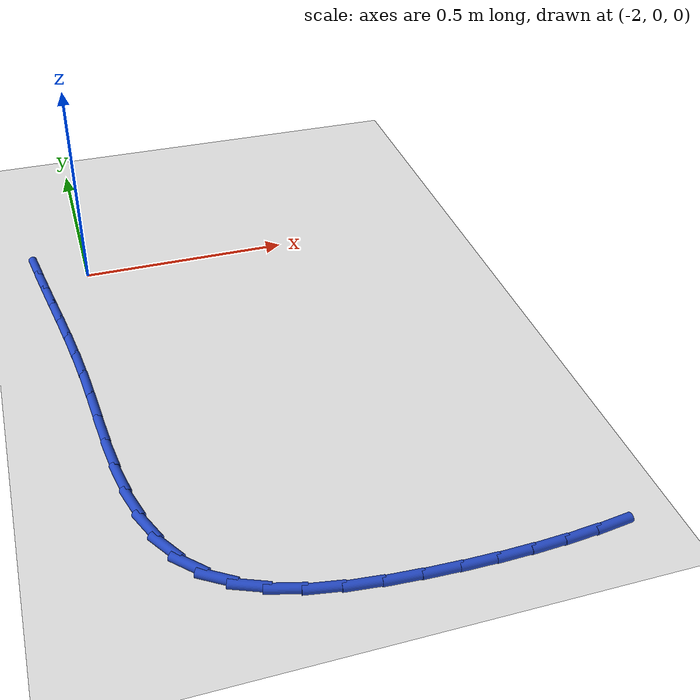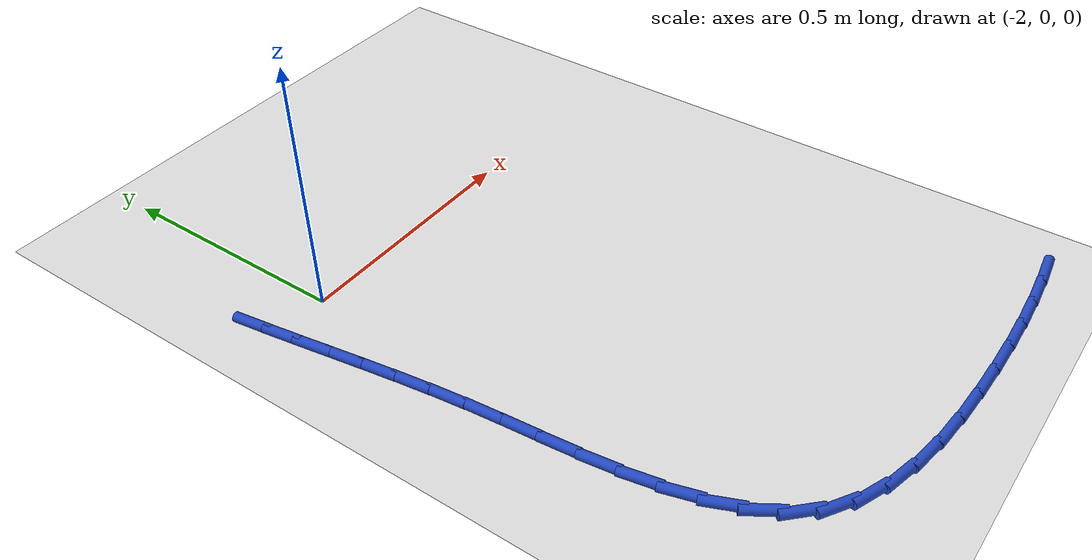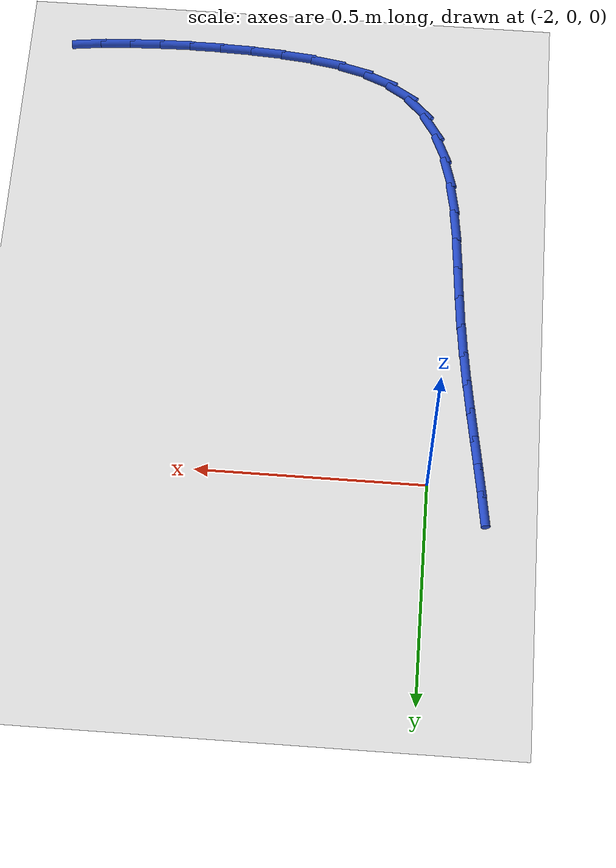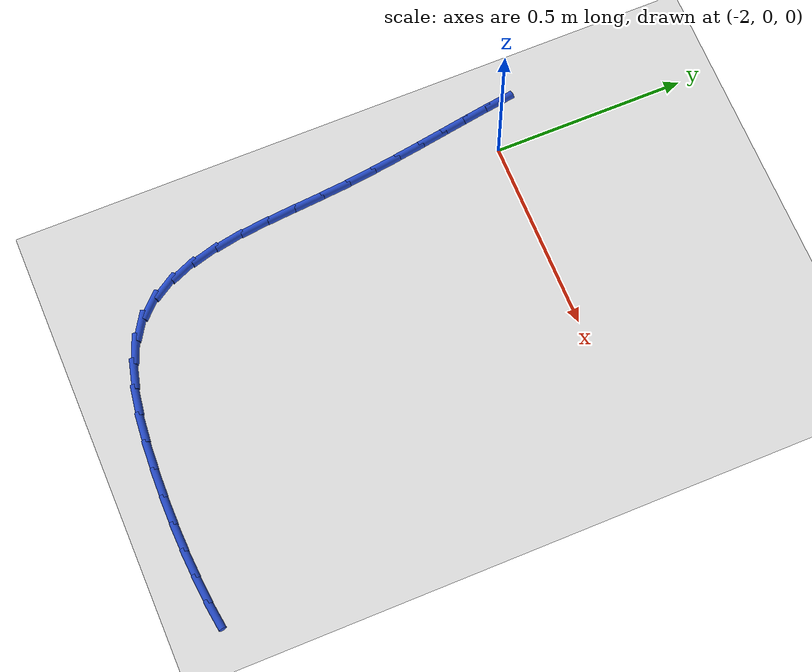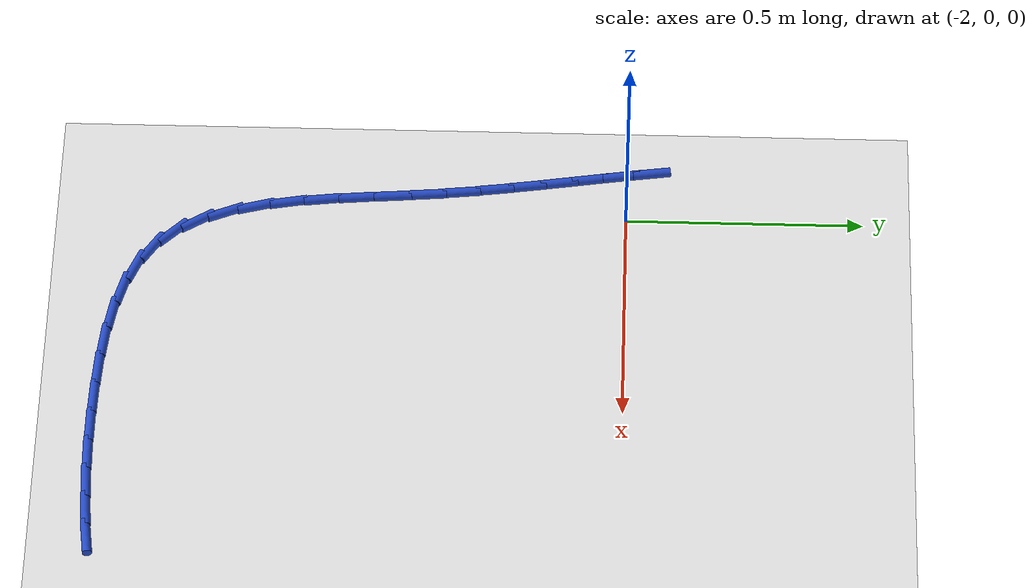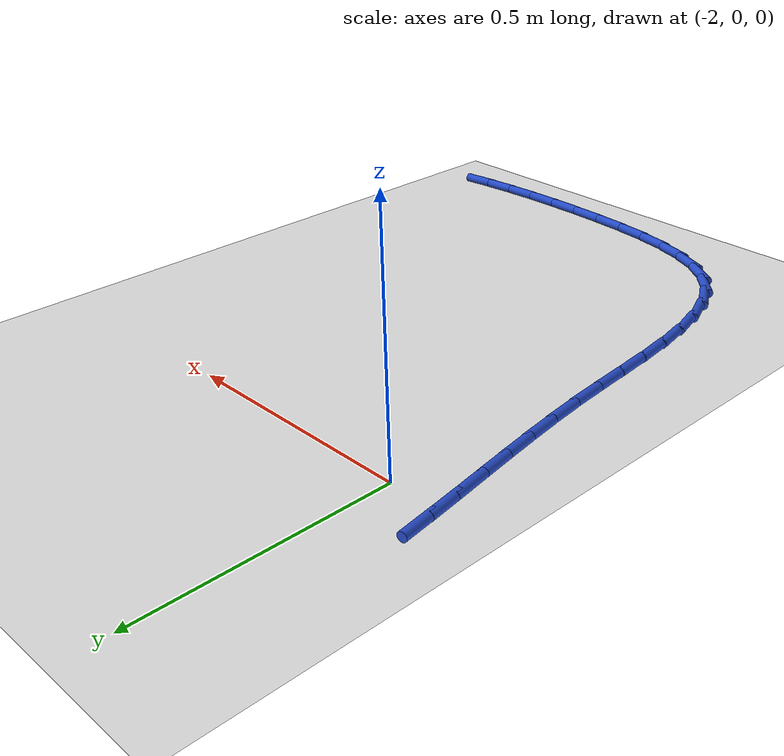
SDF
<sdf version="1.6">
 <world name="default">
  <model name="ground_plane">
   <static>1</static>
   <link name="link">
    <collision name="collision">
     <geometry><plane><normal>0 0 1</normal><size>100 100</size></plane></geometry>
     <surface><friction><ode><mu>100</mu><mu2>50</mu2></ode></friction></surface>
    </collision>
    <visual name="visual">
     <cast_shadows>0</cast_shadows>
     <geometry><plane><normal>0 0 1</normal><size>100 100</size></plane></geometry>
     <material>
      <script><uri>file://media/materials/scripts/gazebo.material</uri><name>Gazebo/WhiteGlow</name></script>
     </material>
    </visual>
   </link>
  </model>
  <model name="line">
   <link name="link_57">
    <pose>-2.122200458308828 0.05315590974785821 0.01 0 1.57 -1.4257960675158883</pose>
    <collision name="collision">
     <geometry><cylinder><radius>0.01</radius><length>0.08</length></cylinder></geometry>
    </collision>
    <visual name="visual">
     <material>
      <script><name>Gazebo/Blue</name><uri>file://media/materials/scripts/gazebo.material</uri></script>
     </material>
     <geometry><cylinder><radius>0.01</radius><length>0.08</length></cylinder></geometry>
    </visual>
   </link>
   <link name="link_58">
    <pose>-2.1128059712877327 -0.011178834647294605 0.01 0 1.57 -1.4155370163606633</pose>
    <collision name="collision">
     <geometry><cylinder><radius>0.01</radius><length>0.08</length></cylinder></geometry>
    </collision>
    <visual name="visual">
     <material>
      <script><name>Gazebo/Blue</name><uri>file://media/materials/scripts/gazebo.material</uri></script>
     </material>
     <geometry><cylinder><radius>0.01</radius><length>0.08</length></cylinder></geometry>
    </visual>
   </link>
   <link name="link_59">
    <pose>-2.102611384518419 -0.07631206081221154 0.01 0 1.57 -1.4122444783969827</pose>
    <collision name="collision">
     <geometry><cylinder><radius>0.01</radius><length>0.08</length></cylinder></geometry>
    </collision>
    <visual name="visual">
     <material>
      <script><name>Gazebo/Blue</name><uri>file://media/materials/scripts/gazebo.material</uri></script>
     </material>
     <geometry><cylinder><radius>0.01</radius><length>0.08</length></cylinder></geometry>
    </visual>
   </link>
   <link name="link_60">
    <pose>-2.0920390971730276 -0.1424326861936498 0.01 0 1.57 -1.4156191204695645</pose>
    <collision name="collision">
     <geometry><cylinder><radius>0.01</radius><length>0.08</length></cylinder></geometry>
    </collision>
    <visual name="visual">
     <material>
      <script><name>Gazebo/Blue</name><uri>file://media/materials/scripts/gazebo.material</uri></script>
     </material>
     <geometry><cylinder><radius>0.01</radius><length>0.08</length></cylinder></geometry>
    </visual>
   </link>
   <link name="link_61">
    <pose>-2.0815115084236995 -0.20972962823836974 0.01 0 1.57 -1.425309974254642</pose>
    <collision name="collision">
     <geometry><cylinder><radius>0.01</radius><length>0.08</length></cylinder></geometry>
    </collision>
    <visual name="visual">
     <material>
      <script><name>Gazebo/Blue</name><uri>file://media/materials/scripts/gazebo.material</uri></script>
     </material>
     <geometry><cylinder><radius>0.01</radius><length>0.08</length></cylinder></geometry>
    </visual>
   </link>
   <link name="link_62">
    <pose>-2.0714510174425746 -0.2783918043931284 0.01 0 1.57 -1.4409209544580361</pose>
    <collision name="collision">
     <geometry><cylinder><radius>0.01</radius><length>0.08</length></cylinder></geometry>
    </collision>
    <visual name="visual">
     <material>
      <script><name>Gazebo/Blue</name><uri>file://media/materials/scripts/gazebo.material</uri></script>
     </material>
     <geometry><cylinder><radius>0.01</radius><length>0.08</length></cylinder></geometry>
    </visual>
   </link>
   <link name="link_63">
    <pose>-2.0622800234017933 -0.3486081321046862 0.01 0 1.57 -1.4620117612770123</pose>
    <collision name="collision">
     <geometry><cylinder><radius>0.01</radius><length>0.08</length></cylinder></geometry>
    </collision>
    <visual name="visual">
     <material>
      <script><name>Gazebo/Blue</name><uri>file://media/materials/scripts/gazebo.material</uri></script>
     </material>
     <geometry><cylinder><radius>0.01</radius><length>0.08</length></cylinder></geometry>
    </visual>
   </link>
   <link name="link_64">
    <pose>-2.0544209254734964 -0.42056752881980003 0.01 0 1.57 -1.4846061456886974</pose>
    <collision name="collision">
     <geometry><cylinder><radius>0.01</radius><length>0.08</length></cylinder></geometry>
    </collision>
    <visual name="visual">
     <material>
      <script><name>Gazebo/Blue</name><uri>file://media/materials/scripts/gazebo.material</uri></script>
     </material>
     <geometry><cylinder><radius>0.01</radius><length>0.08</length></cylinder></geometry>
    </visual>
   </link>
   <link name="link_65">
    <pose>-2.048054107879359 -0.49425392641981497 0.01 0 1.57 -1.491678495242095</pose>
    <collision name="collision">
     <geometry><cylinder><radius>0.01</radius><length>0.08</length></cylinder></geometry>
    </collision>
    <visual name="visual">
     <material>
      <script><name>Gazebo/Blue</name><uri>file://media/materials/scripts/gazebo.material</uri></script>
     </material>
     <geometry><cylinder><radius>0.01</radius><length>0.08</length></cylinder></geometry>
    </visual>
   </link>
   <link name="link_66">
    <pose>-2.042157129425947 -0.5686324691147534 0.01 0 1.57 -1.4785122833428632</pose>
    <collision name="collision">
     <geometry><cylinder><radius>0.01</radius><length>0.08</length></cylinder></geometry>
    </collision>
    <visual name="visual">
     <material>
      <script><name>Gazebo/Blue</name><uri>file://media/materials/scripts/gazebo.material</uri></script>
     </material>
     <geometry><cylinder><radius>0.01</radius><length>0.08</length></cylinder></geometry>
    </visual>
   </link>
   <link name="link_67">
    <pose>-2.035334577731616 -0.642352396209785 0.01 0 1.57 -1.4439727586413824</pose>
    <collision name="collision">
     <geometry><cylinder><radius>0.01</radius><length>0.08</length></cylinder></geometry>
    </collision>
    <visual name="visual">
     <material>
      <script><name>Gazebo/Blue</name><uri>file://media/materials/scripts/gazebo.material</uri></script>
     </material>
     <geometry><cylinder><radius>0.01</radius><length>0.08</length></cylinder></geometry>
    </visual>
   </link>
   <link name="link_68">
    <pose>-2.026190926563248 -0.7140628505784017 0.01 0 1.57 -1.3848176868150515</pose>
    <collision name="collision">
     <geometry><cylinder><radius>0.01</radius><length>0.08</length></cylinder></geometry>
    </collision>
    <visual name="visual">
     <material>
      <script><name>Gazebo/Blue</name><uri>file://media/materials/scripts/gazebo.material</uri></script>
     </material>
     <geometry><cylinder><radius>0.01</radius><length>0.08</length></cylinder></geometry>
    </visual>
   </link>
   <link name="link_69">
    <pose>-2.0133306496877252 -0.7824129750940925 0.01 0 1.57 -1.295551955618781</pose>
    <collision name="collision">
     <geometry><cylinder><radius>0.01</radius><length>0.08</length></cylinder></geometry>
    </collision>
    <visual name="visual">
     <material>
      <script><name>Gazebo/Blue</name><uri>file://media/materials/scripts/gazebo.material</uri></script>
     </material>
     <geometry><cylinder><radius>0.01</radius><length>0.08</length></cylinder></geometry>
    </visual>
   </link>
   <link name="link_70">
    <pose>-1.9953582208719283 -0.8460519126303491 0.01 0 1.57 -1.1687796489907092</pose>
    <collision name="collision">
     <geometry><cylinder><radius>0.01</radius><length>0.08</length></cylinder></geometry>
    </collision>
    <visual name="visual">
     <material>
      <script><name>Gazebo/Blue</name><uri>file://media/materials/scripts/gazebo.material</uri></script>
     </material>
     <geometry><cylinder><radius>0.01</radius><length>0.08</length></cylinder></geometry>
    </visual>
   </link>
   <link name="link_71">
    <pose>-1.9708781138827407 -0.903628806060661 0.01 0 1.57 -0.9975565217574115</pose>
    <collision name="collision">
     <geometry><cylinder><radius>0.01</radius><length>0.08</length></cylinder></geometry>
    </collision>
    <visual name="visual">
     <material>
      <script><name>Gazebo/Blue</name><uri>file://media/materials/scripts/gazebo.material</uri></script>
     </material>
     <geometry><cylinder><radius>0.01</radius><length>0.08</length></cylinder></geometry>
    </visual>
   </link>
   <link name="link_72">
    <pose>-1.938494802487043 -0.9537927982585198 0.01 0 1.57 -0.7821475732626486</pose>
    <collision name="collision">
     <geometry><cylinder><radius>0.01</radius><length>0.08</length></cylinder></geometry>
    </collision>
    <visual name="visual">
     <material>
      <script><name>Gazebo/Blue</name><uri>file://media/materials/scripts/gazebo.material</uri></script>
     </material>
     <geometry><cylinder><radius>0.01</radius><length>0.08</length></cylinder></geometry>
    </visual>
   </link>
   <link name="link_73">
    <pose>-1.8968192503815038 -0.9951982870010951 0.01 0 1.57 -0.5584788448870625</pose>
    <collision name="collision">
     <geometry><cylinder><radius>0.01</radius><length>0.08</length></cylinder></geometry>
    </collision>
    <visual name="visual">
     <material>
      <script><name>Gazebo/Blue</name><uri>file://media/materials/scripts/gazebo.material</uri></script>
     </material>
     <geometry><cylinder><radius>0.01</radius><length>0.08</length></cylinder></geometry>
    </visual>
   </link>
   <link name="link_74">
    <pose>-1.8454473159020583 -1.0272971403981077 0.01 0 1.57 -0.3821272775951044</pose>
    <collision name="collision">
     <geometry><cylinder><radius>0.01</radius><length>0.08</length></cylinder></geometry>
    </collision>
    <visual name="visual">
     <material>
      <script><name>Gazebo/Blue</name><uri>file://media/materials/scripts/gazebo.material</uri></script>
     </material>
     <geometry><cylinder><radius>0.01</radius><length>0.08</length></cylinder></geometry>
    </visual>
   </link>
   <link name="link_75">
    <pose>-1.7860057181255977 -1.0511856168583773 0.01 0 1.57 -0.25311962442124863</pose>
    <collision name="collision">
     <geometry><cylinder><radius>0.01</radius><length>0.08</length></cylinder></geometry>
    </collision>
    <visual name="visual">
     <material>
      <script><name>Gazebo/Blue</name><uri>file://media/materials/scripts/gazebo.material</uri></script>
     </material>
     <geometry><cylinder><radius>0.01</radius><length>0.08</length></cylinder></geometry>
    </visual>
   </link>
   <link name="link_76">
    <pose>-1.7203718748236587 -1.0681629658147587 0.01 0 1.57 -0.16107535530765094</pose>
    <collision name="collision">
     <geometry><cylinder><radius>0.01</radius><length>0.08</length></cylinder></geometry>
    </collision>
    <visual name="visual">
     <material>
      <script><name>Gazebo/Blue</name><uri>file://media/materials/scripts/gazebo.material</uri></script>
     </material>
     <geometry><cylinder><radius>0.01</radius><length>0.08</length></cylinder></geometry>
    </visual>
   </link>
   <link name="link_77">
    <pose>-1.6504232037677815 -1.079528436700107 0.01 0 1.57 -0.09712710116009368</pose>
    <collision name="collision">
     <geometry><cylinder><radius>0.01</radius><length>0.08</length></cylinder></geometry>
    </collision>
    <visual name="visual">
     <material>
      <script><name>Gazebo/Blue</name><uri>file://media/materials/scripts/gazebo.material</uri></script>
     </material>
     <geometry><cylinder><radius>0.01</radius><length>0.08</length></cylinder></geometry>
    </visual>
   </link>
   <link name="link_78">
    <pose>-1.5780371227295034 -1.086581278947277 0.01 0 1.57 -0.05531707682838279</pose>
    <collision name="collision">
     <geometry><cylinder><radius>0.01</radius><length>0.08</length></cylinder></geometry>
    </collision>
    <visual name="visual">
     <material>
      <script><name>Gazebo/Blue</name><uri>file://media/materials/scripts/gazebo.material</uri></script>
     </material>
     <geometry><cylinder><radius>0.01</radius><length>0.08</length></cylinder></geometry>
    </visual>
   </link>
   <link name="link_79">
    <pose>-1.505090821617412 -1.0906205759856604 0.01 0 1.57 -0.028126675567464038</pose>
    <collision name="collision">
     <geometry><cylinder><radius>0.01</radius><length>0.08</length></cylinder></geometry>
    </collision>
    <visual name="visual">
     <material>
      <script><name>Gazebo/Blue</name><uri>file://media/materials/scripts/gazebo.material</uri></script>
     </material>
     <geometry><cylinder><radius>0.01</radius><length>0.08</length></cylinder></geometry>
    </visual>
   </link>
   <link name="link_80">
    <pose>-1.4330523106213735 -1.0926473142985658 0.01 0 1.57 -0.001437114354567868</pose>
    <collision name="collision">
     <geometry><cylinder><radius>0.01</radius><length>0.08</length></cylinder></geometry>
    </collision>
    <visual name="visual">
     <material>
      <script><name>Gazebo/Blue</name><uri>file://media/materials/scripts/gazebo.material</uri></script>
     </material>
     <geometry><cylinder><radius>0.01</radius><length>0.08</length></cylinder></geometry>
    </visual>
   </link>
   <link name="link_81">
    <pose>-1.3621360350247835 -1.0927492291663596 0.01 0 1.57 0.027342077888966688</pose>
    <collision name="collision">
     <geometry><cylinder><radius>0.01</radius><length>0.08</length></cylinder></geometry>
    </collision>
    <visual name="visual">
     <material>
      <script><name>Gazebo/Blue</name><uri>file://media/materials/scripts/gazebo.material</uri></script>
     </material>
     <geometry><cylinder><radius>0.01</radius><length>0.08</length></cylinder></geometry>
    </visual>
   </link>
   <link name="link_82">
    <pose>-1.2923171962961848 -1.0908397611834462 0.01 0 1.57 0.0582269320645448</pose>
    <collision name="collision">
     <geometry><cylinder><radius>0.01</radius><length>0.08</length></cylinder></geometry>
    </collision>
    <visual name="visual">
     <material>
      <script><name>Gazebo/Blue</name><uri>file://media/materials/scripts/gazebo.material</uri></script>
     </material>
     <geometry><cylinder><radius>0.01</radius><length>0.08</length></cylinder></geometry>
    </visual>
   </link>
   <link name="link_83">
    <pose>-1.223570995904121 -1.0868323509442304 0.01 0 1.57 0.09120947388315763</pose>
    <collision name="collision">
     <geometry><cylinder><radius>0.01</radius><length>0.08</length></cylinder></geometry>
    </collision>
    <visual name="visual">
     <material>
      <script><name>Gazebo/Blue</name><uri>file://media/materials/scripts/gazebo.material</uri></script>
     </material>
     <geometry><cylinder><radius>0.01</radius><length>0.08</length></cylinder></geometry>
    </visual>
   </link>
   <link name="link_84">
    <pose>-1.1558726353171371 -1.0806404390431168 0.01 0 1.57 0.12625299903008247</pose>
    <collision name="collision">
     <geometry><cylinder><radius>0.01</radius><length>0.08</length></cylinder></geometry>
    </collision>
    <visual name="visual">
     <material>
      <script><name>Gazebo/Blue</name><uri>file://media/materials/scripts/gazebo.material</uri></script>
     </material>
     <geometry><cylinder><radius>0.01</radius><length>0.08</length></cylinder></geometry>
    </visual>
   </link>
  </model>
 </world>
</sdf>
